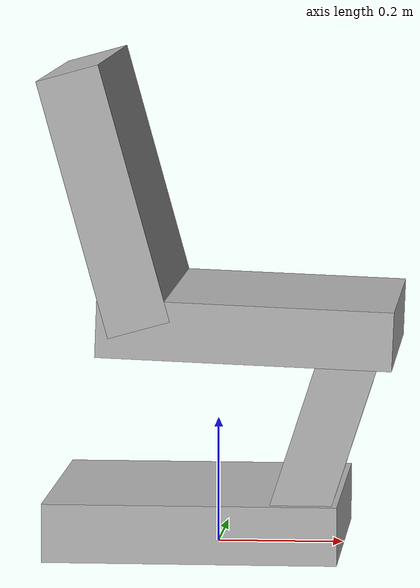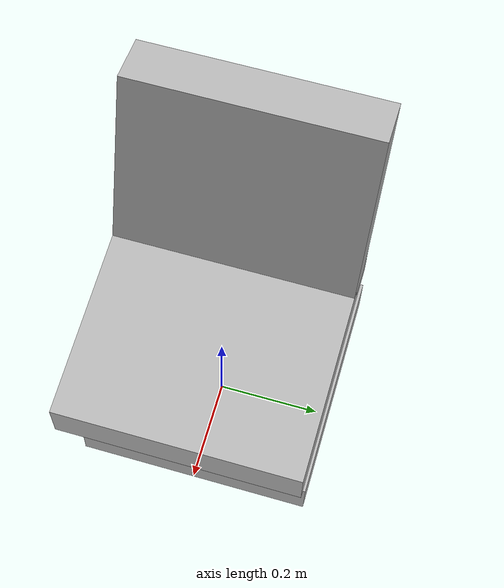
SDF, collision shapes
<?xml version="1.0" ?>
<sdf version="1.6">
  <model name="aws_robomaker_residential_ChairD_01">
    <link name="link">

      <inertial>
        <mass>4.5</mass>
          <inertia>
            <ixy>0</ixy>
            <ixz>0</ixz>
            <iyz>0</iyz>
            <ixx>0.217</ixx>
            <iyy>0.217</iyy>
            <izz>0.067</izz>
          </inertia>
      </inertial>
      <collision name="aws_chaird_01_collision_collider_box">
        <pose>-0.029729 -0.000399 0.046252 0.0 -0.0 0.0</pose>
        <geometry>
          <box>
            <size>0.464046 0.453989 0.092504</size>
          </box>
        </geometry>
      </collision>
      <collision name="aws_chaird_01_collision_collider_box.001">
        <pose>0.18455 -0.000399 0.215179 -0.0 1.883563 0.0</pose>
        <geometry>
          <box>
            <size>0.361783 0.423813 0.092504</size>
          </box>
        </geometry>
      </collision>
      <collision name="aws_chaird_01_collision_collider_box.002">
        <pose>0.057129 -0.000399 0.363126 0.0 0.038865 0.0</pose>
        <geometry>
          <box>
            <size>0.464046 0.459716 0.092504</size>
          </box>
        </geometry>
      </collision>
      <collision name="aws_chaird_01_collision_collider_box.003">
        <pose>-0.162764 -0.000399 0.569411 -1e-06 -1.840821 0.0</pose>
        <geometry>
          <box>
            <size>0.4158 0.459716 0.10076</size>
          </box>
        </geometry>
      </collision>
      <visual name="visual">
        <geometry>
          <mesh>
            <uri>model://aws_robomaker_residential_ChairD_01/meshes/aws_ChairD_01_visual.DAE</uri>
          </mesh>
        </geometry>
        <meta> <layer> 1 </layer></meta>
      </visual>
    </link>
  </model>
</sdf>
